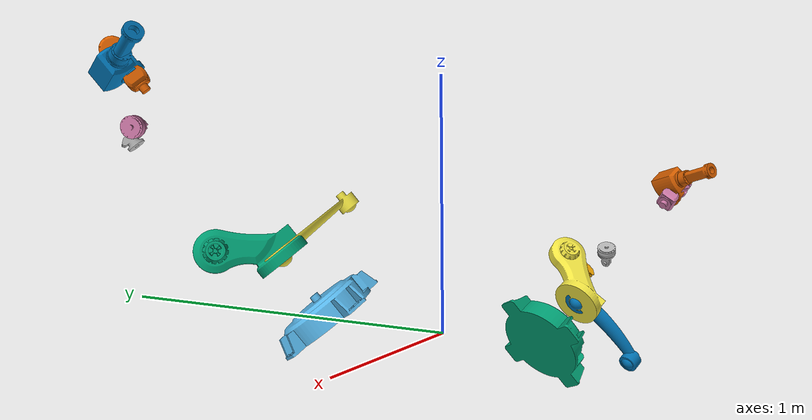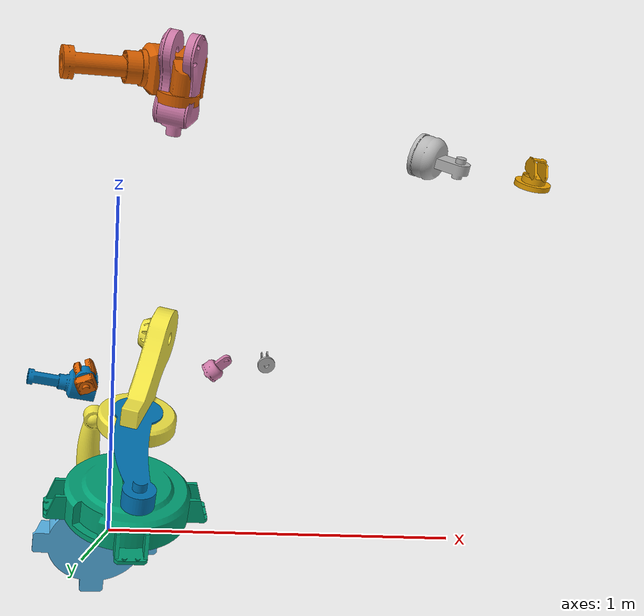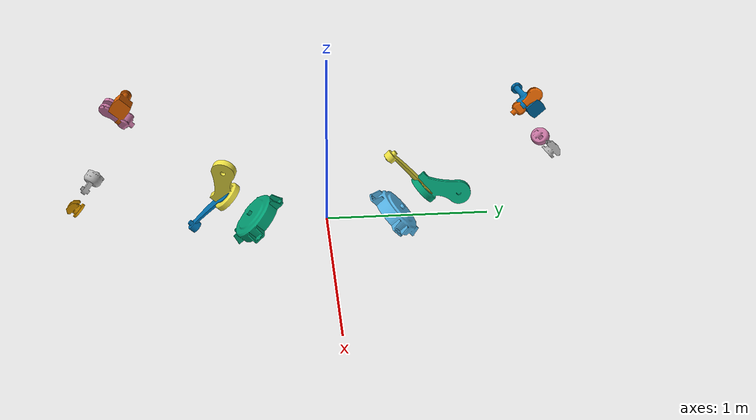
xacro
<?xml version="1.0"?>
<robot name="fanuc_crx10ia_dual" xmlns:xacro="http://ros.org/wiki/xacro">

  <link name="world"/>

  <xacro:include filename="$(find arm_description)/urdf/arm.urdf.xacro"/>

  <!-- ================= LEFT ARM ================= -->
  <xacro:fanuc_crx10ia_arm
      prefix="left_"
      parent="world"
      xyz="0.0 0.4 0.0"
      rpy="-0.785398 0 0"/>   <!-- +45 deg -->

  <!-- ================= RIGHT ARM ================= -->
  <xacro:fanuc_crx10ia_arm
      prefix="right_"
      parent="world"
      xyz="0.0 -0.4 0.0"
      rpy="0.785398 0 0"/>  <!-- -45 deg -->
  <ros2_control name="dual_arm_system" type="system">

  <hardware>
    <!-- Fake hardware for simulation -->
    <plugin>mock_components/GenericSystem</plugin>
  </hardware>

  <!-- ================= LEFT ARM ================= -->
  <joint name="left_joint_1">
    <command_interface name="position"/>
    <state_interface name="position"/>
    <state_interface name="velocity"/>
  </joint>

  <joint name="left_joint_2">
    <command_interface name="position"/>
    <state_interface name="position"/>
    <state_interface name="velocity"/>
  </joint>

  <joint name="left_joint_3">
    <command_interface name="position"/>
    <state_interface name="position"/>
    <state_interface name="velocity"/>
  </joint>

  <joint name="left_joint_4">
    <command_interface name="position"/>
    <state_interface name="position"/>
    <state_interface name="velocity"/>
  </joint>

  <joint name="left_joint_5">
    <command_interface name="position"/>
    <state_interface name="position"/>
    <state_interface name="velocity"/>
  </joint>

  <joint name="left_joint_6">
    <command_interface name="position"/>
    <state_interface name="position"/>
    <state_interface name="velocity"/>
  </joint>

  <!-- ================= RIGHT ARM ================= -->
  <joint name="right_joint_1">
    <command_interface name="position"/>
    <state_interface name="position"/>
    <state_interface name="velocity"/>
  </joint>

  <joint name="right_joint_2">
    <command_interface name="position"/>
    <state_interface name="position"/>
    <state_interface name="velocity"/>
  </joint>

  <joint name="right_joint_3">
    <command_interface name="position"/>
    <state_interface name="position"/>
    <state_interface name="velocity"/>
  </joint>

  <joint name="right_joint_4">
    <command_interface name="position"/>
    <state_interface name="position"/>
    <state_interface name="velocity"/>
  </joint>

  <joint name="right_joint_5">
    <command_interface name="position"/>
    <state_interface name="position"/>
    <state_interface name="velocity"/>
  </joint>

  <joint name="right_joint_6">
    <command_interface name="position"/>
    <state_interface name="position"/>
    <state_interface name="velocity"/>
  </joint>

</ros2_control>
</robot>

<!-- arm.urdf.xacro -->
<robot xmlns:xacro="http://ros.org/wiki/xacro">

  <xacro:macro name="fanuc_crx10ia_arm" params="prefix parent xyz rpy">

    <!-- ================= BASE LINK ================= -->
    <link name="${prefix}base_link">
      <visual>
        <origin xyz="0 0 0" rpy="0 0 0"/>
        <geometry>
          <mesh filename="package://arm_description/meshes/base_link.stl"
                scale="1 1 1"/>
        </geometry>
      </visual>
      <collision>
        <origin xyz="0 0 0" rpy="0 0 0"/>
        <geometry>
          <mesh filename="package://arm_description/meshes/base_link.stl"
                scale="1 1 1"/>
        </geometry>
      </collision>
    </link>

    <!-- world attachment -->
    <joint name="${prefix}base_fixed_joint" type="fixed">
      <parent link="${parent}"/>
      <child link="${prefix}base_link"/>
      <origin xyz="${xyz}" rpy="${rpy}"/>
    </joint>

    <!-- ================= LINK 1 ================= -->
    <link name="${prefix}link_1">
      <visual>
        <geometry>
          <mesh filename="package://arm_description/meshes/link_1.stl" scale="1 1 1"/>
        </geometry>
      </visual>
      <collision>
        <geometry>
          <mesh filename="package://arm_description/meshes/link_1.stl" scale="1 1 1"/>
        </geometry>
      </collision>
    </link>

    <!-- ================= LINK 2 ================= -->
    <link name="${prefix}link_2">
      <visual>
        <geometry>
          <mesh filename="package://arm_description/meshes/link_2.stl" scale="1 1 1"/>
        </geometry>
      </visual>
      <collision>
        <geometry>
          <mesh filename="package://arm_description/meshes/link_2.stl" scale="1 1 1"/>
        </geometry>
      </collision>
    </link>

    <!-- ================= LINK 3 ================= -->
    <link name="${prefix}link_3">
      <visual>
        <geometry>
          <mesh filename="package://arm_description/meshes/link_3.stl" scale="1 1 1"/>
        </geometry>
      </visual>
      <collision>
        <geometry>
          <mesh filename="package://arm_description/meshes/link_3.stl" scale="1 1 1"/>
        </geometry>
      </collision>
    </link>

    <!-- ================= LINK 4 ================= -->
    <link name="${prefix}link_4">
      <visual>
        <geometry>
          <mesh filename="package://arm_description/meshes/link_4.stl" scale="1 1 1"/>
        </geometry>
      </visual>
      <collision>
        <geometry>
          <mesh filename="package://arm_description/meshes/link_4.stl" scale="1 1 1"/>
        </geometry>
      </collision>
    </link>

    <!-- ================= LINK 5 ================= -->
    <link name="${prefix}link_5">
      <visual>
        <geometry>
          <mesh filename="package://arm_description/meshes/link_5.stl" scale="1 1 1"/>
        </geometry>
      </visual>
      <collision>
        <geometry>
          <mesh filename="package://arm_description/meshes/link_5.stl" scale="1 1 1"/>
        </geometry>
      </collision>
    </link>

    <!-- ================= LINK 6 ================= -->
    <link name="${prefix}link_6">
      <visual>
        <geometry>
          <mesh filename="package://arm_description/meshes/link_6.stl" scale="1 1 1"/>
        </geometry>
      </visual>
      <collision>
        <geometry>
          <mesh filename="package://arm_description/meshes/link_6.stl" scale="1 1 1"/>
        </geometry>
      </collision>
    </link>

    <!-- ================= JOINTS ================= -->
    <joint name="${prefix}joint_1" type="revolute">
      <parent link="${prefix}base_link"/>
      <child link="${prefix}link_1"/>
      <origin xyz="0 0 0.245" rpy="0 0 0"/>
      <axis xyz="0 0 1"/>
      <limit lower="-3.14159" upper="3.14159" effort="10" velocity="2.094"/>
    </joint>

    <joint name="${prefix}joint_2" type="revolute">
      <parent link="${prefix}link_1"/>
      <child link="${prefix}link_2"/>
      <origin xyz="0 0 0" rpy="0 0 0"/>
      <axis xyz="0 1 0"/>
      <limit lower="-3.14159" upper="3.14159" effort="10" velocity="2.094"/>
    </joint>

    <joint name="${prefix}joint_3" type="revolute">
      <parent link="${prefix}link_2"/>
      <child link="${prefix}link_3"/>
      <origin xyz="0 0 0.710" rpy="0 0 0"/>
      <axis xyz="0 -1 0"/>
      <limit lower="-4.71239" upper="4.71239" effort="10" velocity="3.14159"/>
    </joint>

    <joint name="${prefix}joint_4" type="revolute">
      <parent link="${prefix}link_3"/>
      <child link="${prefix}link_4"/>
      <origin xyz="0 0 0" rpy="0 0 0"/>
      <axis xyz="-1 0 0"/>
      <limit lower="-3.31613" upper="3.31613" effort="10" velocity="3.14159"/>
    </joint>

    <joint name="${prefix}joint_5" type="revolute">
      <parent link="${prefix}link_4"/>
      <child link="${prefix}link_5"/>
      <origin xyz="0.540 -0.150 0" rpy="0 0 0"/>
      <axis xyz="0 -1 0"/>
      <limit lower="-3.14159" upper="3.14159" effort="10" velocity="3.14159"/>
    </joint>

    <joint name="${prefix}joint_6" type="revolute">
      <parent link="${prefix}link_5"/>
      <child link="${prefix}link_6"/>
      <origin xyz="0.160 0 0" rpy="0 0 0"/>
      <axis xyz="-1 0 0"/>
      <limit lower="-3.31613" upper="3.31613" effort="10" velocity="3.14159"/>
    </joint>

    <!-- ================= TOOL FRAMES ================= -->
    <link name="${prefix}flange"/>
    <joint name="${prefix}joint_6_flange" type="fixed">
      <parent link="${prefix}link_6"/>
      <child link="${prefix}flange"/>
      <origin xyz="0 0 0" rpy="0 0 0"/>
    </joint>

    <link name="${prefix}tool0"/>
    <joint name="${prefix}flange_tool0" type="fixed">
      <parent link="${prefix}flange"/>
      <child link="${prefix}tool0"/>
      <origin xyz="0 0 0" rpy="3.14159265 -1.57079633 0"/>
    </joint>

  </xacro:macro>

</robot>
